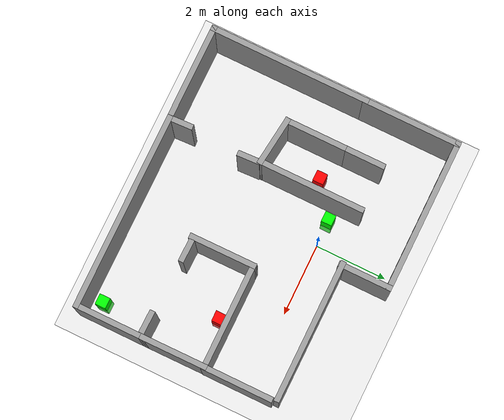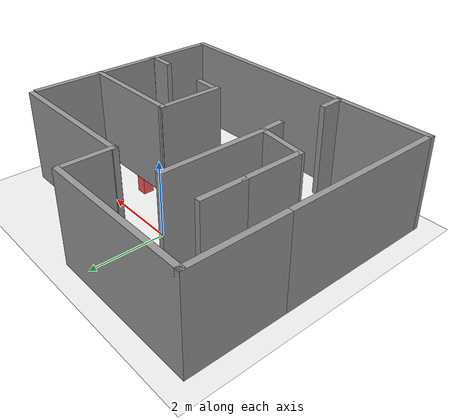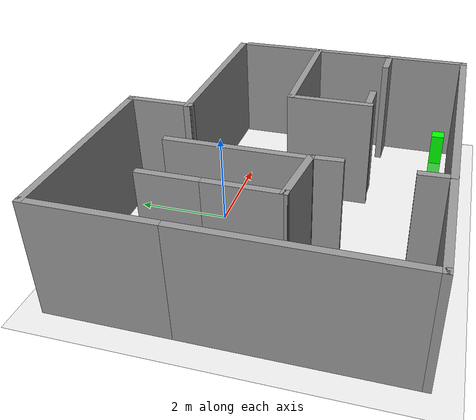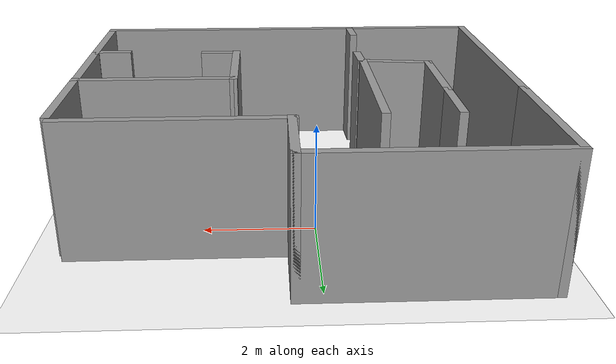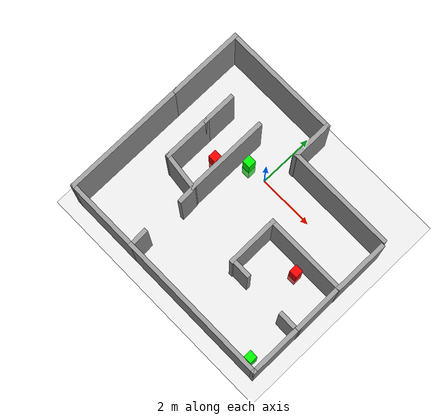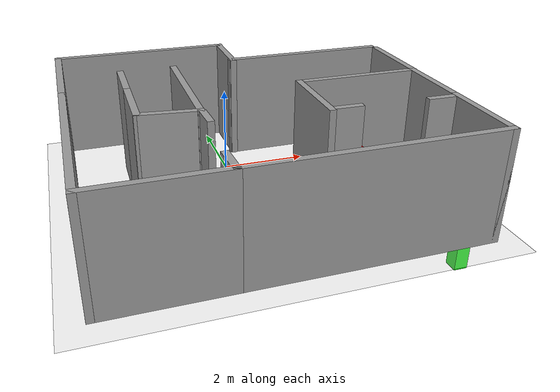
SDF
<sdf version="1.7">
 <world name="default">
  <light name="sun" type="directional">
   <pose>0 0 10 0 -0 0</pose>
   <diffuse>0.8 0.8 0.8 1</diffuse>
   <specular>0.2 0.2 0.2 1</specular>
   <attenuation>
    <range>1000</range>
    <constant>0.9</constant>
    <linear>0.01</linear>
    <quadratic>0.001</quadratic>
   </attenuation>
   <direction>-0.5 0.1 -0.9</direction>
   <spot><inner_angle>0</inner_angle><outer_angle>0</outer_angle><falloff>0</falloff></spot>
  </light>
  <model name="ground_plane">
   <static>1</static>
   <link name="link">
    <collision name="collision">
     <geometry><plane><normal>0 0 1</normal><size>100 100</size></plane></geometry>
     <surface>
      <contact><collide_bitmask>65535</collide_bitmask></contact>
      <friction><ode><mu>100</mu><mu2>50</mu2></ode></friction>
     </surface>
    </collision>
    <visual name="visual">
     <cast_shadows>0</cast_shadows>
     <geometry><plane><normal>0 0 1</normal><size>100 100</size></plane></geometry>
     <material>
      <script><uri>file://media/materials/scripts/gazebo.material</uri><name>Gazebo/Grey</name></script>
     </material>
    </visual>
   </link>
  </model>
  <gravity>0 0 -9.8</gravity>
  <magnetic_field>6e-06 2.3e-05 -4.2e-05</magnetic_field>
  <atmosphere type="adiabatic"/>
  <physics type="ode">
   <max_step_size>0.001</max_step_size>
   <real_time_factor>1</real_time_factor>
   <real_time_update_rate>1000</real_time_update_rate>
  </physics>
  <scene><ambient>0.4 0.4 0.4 1</ambient><background>0.7 0.7 0.7 1</background><shadows>1</shadows></scene>
  <spherical_coordinates>
   <surface_model>EARTH_WGS84</surface_model>
   <latitude_deg>0</latitude_deg>
   <longitude_deg>0</longitude_deg>
   <elevation>0</elevation>
   <heading_deg>0</heading_deg>
  </spherical_coordinates>
  <model name="simple_building1">
   <link name="Wall_1">
    <pose>3.96978 -0.74 0 0 -0 1.57658</pose>
    <visual name="Wall_1_Visual">
     <pose>0 0 1.25 0 -0 0</pose>
     <geometry><box><size>1.88003 0.15 2.5</size></box></geometry>
     <material>
      <script><uri>file://media/materials/scripts/gazebo.material</uri><name>Gazebo/Grey</name></script>
      <ambient>1 1 1 1</ambient>
      <shader type="pixel"/>
     </material>
     <meta><layer>0</layer></meta>
    </visual>
    <collision name="Wall_1_Collision">
     <pose>0 0 1.25 0 -0 0</pose>
     <geometry><box><size>1.88003 0.15 2.5</size></box></geometry>
     <surface>
      <friction>
       <ode><mu>1</mu><mu2>1</mu2><fdir1>0 0 0</fdir1><slip1>0</slip1><slip2>0</slip2></ode>
       <torsional>
        <coefficient>1</coefficient>
        <patch_radius>0</patch_radius>
        <surface_radius>0</surface_radius>
        <use_patch_radius>1</use_patch_radius>
        <ode><slip>0</slip></ode>
       </torsional>
      </friction>
      <bounce><restitution_coefficient>0</restitution_coefficient><threshold>1e+06</threshold></bounce>
      <contact>
       <collide_without_contact>0</collide_without_contact>
       <collide_without_contact_bitmask>1</collide_without_contact_bitmask>
       <collide_bitmask>1</collide_bitmask>
       <ode>
        <soft_cfm>0</soft_cfm>
        <soft_erp>0.2</soft_erp>
        <kp>1e+13</kp>
        <kd>1</kd>
        <max_vel>0.01</max_vel>
        <min_depth>0</min_depth>
       </ode>
       <bullet>
        <split_impulse>1</split_impulse>
        <split_impulse_penetration_threshold>-0.01</split_impulse_penetration_threshold>
        <soft_cfm>0</soft_cfm>
        <soft_erp>0.2</soft_erp>
        <kp>1e+13</kp>
        <kd>1</kd>
       </bullet>
      </contact>
     </surface>
    </collision>
   </link>
   <link name="Wall_10">
    <pose>1.29978 -3.475 0 0 -0 0</pose>
    <visual name="Wall_10_Visual">
     <pose>0 0 1.25 0 -0 0</pose>
     <geometry><box><size>5.5 0.15 2.5</size></box></geometry>
     <material>
      <script><uri>file://media/materials/scripts/gazebo.material</uri><name>Gazebo/Grey</name></script>
      <ambient>1 1 1 1</ambient>
      <shader type="pixel"/>
     </material>
     <meta><layer>0</layer></meta>
    </visual>
    <collision name="Wall_10_Collision">
     <pose>0 0 1.25 0 -0 0</pose>
     <geometry><box><size>5.5 0.15 2.5</size></box></geometry>
     <surface>
      <friction>
       <ode><mu>1</mu><mu2>1</mu2><fdir1>0 0 0</fdir1><slip1>0</slip1><slip2>0</slip2></ode>
       <torsional>
        <coefficient>1</coefficient>
        <patch_radius>0</patch_radius>
        <surface_radius>0</surface_radius>
        <use_patch_radius>1</use_patch_radius>
        <ode><slip>0</slip></ode>
       </torsional>
      </friction>
      <bounce><restitution_coefficient>0</restitution_coefficient><threshold>1e+06</threshold></bounce>
      <contact>
       <collide_without_contact>0</collide_without_contact>
       <collide_without_contact_bitmask>1</collide_without_contact_bitmask>
       <collide_bitmask>1</collide_bitmask>
       <ode>
        <soft_cfm>0</soft_cfm>
        <soft_erp>0.2</soft_erp>
        <kp>1e+13</kp>
        <kd>1</kd>
        <max_vel>0.01</max_vel>
        <min_depth>0</min_depth>
       </ode>
       <bullet>
        <split_impulse>1</split_impulse>
        <split_impulse_penetration_threshold>-0.01</split_impulse_penetration_threshold>
        <soft_cfm>0</soft_cfm>
        <soft_erp>0.2</soft_erp>
        <kp>1e+13</kp>
        <kd>1</kd>
       </bullet>
      </contact>
     </surface>
    </collision>
   </link>
   <link name="Wall_11">
    <pose>3.97478 -2.54 0 0 -0 1.5708</pose>
    <visual name="Wall_11_Visual">
     <pose>0 0 1.25 0 -0 0</pose>
     <geometry><box><size>2.02 0.15 2.5</size></box></geometry>
     <material>
      <script><uri>file://media/materials/scripts/gazebo.material</uri><name>Gazebo/Grey</name></script>
      <ambient>1 1 1 1</ambient>
      <shader type="pixel"/>
     </material>
     <meta><layer>0</layer></meta>
    </visual>
    <collision name="Wall_11_Collision">
     <pose>0 0 1.25 0 -0 0</pose>
     <geometry><box><size>2.02 0.15 2.5</size></box></geometry>
     <surface>
      <friction>
       <ode><mu>1</mu><mu2>1</mu2><fdir1>0 0 0</fdir1><slip1>0</slip1><slip2>0</slip2></ode>
       <torsional>
        <coefficient>1</coefficient>
        <patch_radius>0</patch_radius>
        <surface_radius>0</surface_radius>
        <use_patch_radius>1</use_patch_radius>
        <ode><slip>0</slip></ode>
       </torsional>
      </friction>
      <bounce><restitution_coefficient>0</restitution_coefficient><threshold>1e+06</threshold></bounce>
      <contact>
       <collide_without_contact>0</collide_without_contact>
       <collide_without_contact_bitmask>1</collide_without_contact_bitmask>
       <collide_bitmask>1</collide_bitmask>
       <ode>
        <soft_cfm>0</soft_cfm>
        <soft_erp>0.2</soft_erp>
        <kp>1e+13</kp>
        <kd>1</kd>
        <max_vel>0.01</max_vel>
        <min_depth>0</min_depth>
       </ode>
       <bullet>
        <split_impulse>1</split_impulse>
        <split_impulse_penetration_threshold>-0.01</split_impulse_penetration_threshold>
        <soft_cfm>0</soft_cfm>
        <soft_erp>0.2</soft_erp>
        <kp>1e+13</kp>
        <kd>1</kd>
       </bullet>
      </contact>
     </surface>
    </collision>
   </link>
   <link name="Wall_13">
    <pose>-2.67522 -3.475 0 0 -0 3.14159</pose>
    <visual name="Wall_13_Visual">
     <pose>0 0 1.25 0 -0 0</pose>
     <geometry><box><size>2.75 0.15 2.5</size></box></geometry>
     <material>
      <script><uri>file://media/materials/scripts/gazebo.material</uri><name>Gazebo/Grey</name></script>
      <ambient>1 1 1 1</ambient>
      <shader type="pixel"/>
     </material>
     <meta><layer>0</layer></meta>
    </visual>
    <collision name="Wall_13_Collision">
     <pose>0 0 1.25 0 -0 0</pose>
     <geometry><box><size>2.75 0.15 2.5</size></box></geometry>
     <surface>
      <friction>
       <ode><mu>1</mu><mu2>1</mu2><fdir1>0 0 0</fdir1><slip1>0</slip1><slip2>0</slip2></ode>
       <torsional>
        <coefficient>1</coefficient>
        <patch_radius>0</patch_radius>
        <surface_radius>0</surface_radius>
        <use_patch_radius>1</use_patch_radius>
        <ode><slip>0</slip></ode>
       </torsional>
      </friction>
      <bounce><restitution_coefficient>0</restitution_coefficient><threshold>1e+06</threshold></bounce>
      <contact>
       <collide_without_contact>0</collide_without_contact>
       <collide_without_contact_bitmask>1</collide_without_contact_bitmask>
       <collide_bitmask>1</collide_bitmask>
       <ode>
        <soft_cfm>0</soft_cfm>
        <soft_erp>0.2</soft_erp>
        <kp>1e+13</kp>
        <kd>1</kd>
        <max_vel>0.01</max_vel>
        <min_depth>0</min_depth>
       </ode>
       <bullet>
        <split_impulse>1</split_impulse>
        <split_impulse_penetration_threshold>-0.01</split_impulse_penetration_threshold>
        <soft_cfm>0</soft_cfm>
        <soft_erp>0.2</soft_erp>
        <kp>1e+13</kp>
        <kd>1</kd>
       </bullet>
      </contact>
     </surface>
    </collision>
   </link>
   <link name="Wall_13_clone">
    <pose>-1.39581 -3.13867 -0 0 -0 -1.52483</pose>
    <inertial>
     <inertia><ixx>0</ixx><ixy>0</ixy><ixz>0</ixz><iyy>0</iyy><iyz>0</iyz><izz>0</izz></inertia>
     <mass>0</mass>
    </inertial>
    <visual name="Wall_13_Visual">
     <pose>0 0 1.25 0 -0 0</pose>
     <geometry><box><size>0.637449 0.15 2.5</size></box></geometry>
     <material>
      <script><uri>file://media/materials/scripts/gazebo.material</uri><name>Gazebo/Grey</name></script>
      <ambient>1 1 1 1</ambient>
      <shader type="pixel"/>
     </material>
     <meta><layer>0</layer></meta>
    </visual>
    <collision name="Wall_13_Collision">
     <pose>0 0 1.25 0 -0 0</pose>
     <geometry><box><size>0.637449 0.15 2.5</size></box></geometry>
     <surface>
      <friction>
       <ode><mu>1</mu><mu2>1</mu2><fdir1>0 0 0</fdir1><slip1>0</slip1><slip2>0</slip2></ode>
       <torsional>
        <coefficient>1</coefficient>
        <patch_radius>0</patch_radius>
        <surface_radius>0</surface_radius>
        <use_patch_radius>1</use_patch_radius>
        <ode><slip>0</slip></ode>
       </torsional>
      </friction>
      <bounce><restitution_coefficient>0</restitution_coefficient><threshold>1e+06</threshold></bounce>
      <contact>
       <collide_without_contact>0</collide_without_contact>
       <collide_without_contact_bitmask>1</collide_without_contact_bitmask>
       <collide_bitmask>1</collide_bitmask>
       <ode>
        <soft_cfm>0</soft_cfm>
        <soft_erp>0.2</soft_erp>
        <kp>1e+13</kp>
        <kd>1</kd>
        <max_vel>0.01</max_vel>
        <min_depth>0</min_depth>
       </ode>
       <bullet>
        <split_impulse>1</split_impulse>
        <split_impulse_penetration_threshold>-0.01</split_impulse_penetration_threshold>
        <soft_cfm>0</soft_cfm>
        <soft_erp>0.2</soft_erp>
        <kp>1e+13</kp>
        <kd>1</kd>
       </bullet>
      </contact>
     </surface>
    </collision>
   </link>
   <link name="Wall_13_clone_clone">
    <pose>-1.33585 -1.18783 0 0 0 -1.52483</pose>
    <inertial>
     <inertia><ixx>0</ixx><ixy>0</ixy><ixz>0</ixz><iyy>0</iyy><iyz>0</iyz><izz>0</izz></inertia>
     <mass>0</mass>
    </inertial>
    <visual name="Wall_13_Visual">
     <pose>0 0 1.25 0 -0 0</pose>
     <geometry><box><size>0.637449 0.15 2.5</size></box></geometry>
     <material>
      <script><uri>file://media/materials/scripts/gazebo.material</uri><name>Gazebo/Grey</name></script>
      <ambient>1 1 1 1</ambient>
      <shader type="pixel"/>
     </material>
     <meta><layer>0</layer></meta>
    </visual>
    <collision name="Wall_13_Collision">
     <pose>0 0 1.25 0 -0 0</pose>
     <geometry><box><size>0.637449 0.15 2.5</size></box></geometry>
     <surface>
      <friction>
       <ode><mu>1</mu><mu2>1</mu2><fdir1>0 0 0</fdir1><slip1>0</slip1><slip2>0</slip2></ode>
       <torsional>
        <coefficient>1</coefficient>
        <patch_radius>0</patch_radius>
        <surface_radius>0</surface_radius>
        <use_patch_radius>1</use_patch_radius>
        <ode><slip>0</slip></ode>
       </torsional>
      </friction>
      <bounce><restitution_coefficient>0</restitution_coefficient><threshold>1e+06</threshold></bounce>
      <contact>
       <collide_without_contact>0</collide_without_contact>
       <collide_without_contact_bitmask>1</collide_without_contact_bitmask>
       <collide_bitmask>1</collide_bitmask>
       <ode>
        <soft_cfm>0</soft_cfm>
        <soft_erp>0.2</soft_erp>
        <kp>1e+13</kp>
        <kd>1</kd>
        <max_vel>0.01</max_vel>
        <min_depth>0</min_depth>
       </ode>
       <bullet>
        <split_impulse>1</split_impulse>
        <split_impulse_penetration_threshold>-0.01</split_impulse_penetration_threshold>
        <soft_cfm>0</soft_cfm>
        <soft_erp>0.2</soft_erp>
        <kp>1e+13</kp>
        <kd>1</kd>
       </bullet>
      </contact>
     </surface>
    </collision>
   </link>
   <link name="Wall_13_clone_clone_0">
    <pose>3.57794 -1.67487 0 0 0 -0.021038</pose>
    <inertial>
     <inertia><ixx>0</ixx><ixy>0</ixy><ixz>0</ixz><iyy>0</iyy><iyz>0</iyz><izz>0</izz></inertia>
     <mass>0</mass>
    </inertial>
    <visual name="Wall_13_Visual">
     <pose>0 0 1.25 0 -0 0</pose>
     <geometry><box><size>0.637449 0.15 2.5</size></box></geometry>
     <material>
      <script><uri>file://media/materials/scripts/gazebo.material</uri><name>Gazebo/Grey</name></script>
      <ambient>1 1 1 1</ambient>
      <shader type="pixel"/>
     </material>
     <meta><layer>0</layer></meta>
    </visual>
    <collision name="Wall_13_Collision">
     <pose>0 0 1.25 0 -0 0</pose>
     <geometry><box><size>0.637449 0.15 2.5</size></box></geometry>
     <surface>
      <friction>
       <ode><mu>1</mu><mu2>1</mu2><fdir1>0 0 0</fdir1><slip1>0</slip1><slip2>0</slip2></ode>
       <torsional>
        <coefficient>1</coefficient>
        <patch_radius>0</patch_radius>
        <surface_radius>0</surface_radius>
        <use_patch_radius>1</use_patch_radius>
        <ode><slip>0</slip></ode>
       </torsional>
      </friction>
      <bounce><restitution_coefficient>0</restitution_coefficient><threshold>1e+06</threshold></bounce>
      <contact>
       <collide_without_contact>0</collide_without_contact>
       <collide_without_contact_bitmask>1</collide_without_contact_bitmask>
       <collide_bitmask>1</collide_bitmask>
       <ode>
        <soft_cfm>0</soft_cfm>
        <soft_erp>0.2</soft_erp>
        <kp>1e+13</kp>
        <kd>1</kd>
        <max_vel>0.01</max_vel>
        <min_depth>0</min_depth>
       </ode>
       <bullet>
        <split_impulse>1</split_impulse>
        <split_impulse_penetration_threshold>-0.01</split_impulse_penetration_threshold>
        <soft_cfm>0</soft_cfm>
        <soft_erp>0.2</soft_erp>
        <kp>1e+13</kp>
        <kd>1</kd>
       </bullet>
      </contact>
     </surface>
    </collision>
   </link>
   <link name="Wall_13_clone_clone_0_clone">
    <pose>1.51299 -1.57485 0 0 0 -0.021038</pose>
    <inertial>
     <inertia><ixx>0</ixx><ixy>0</ixy><ixz>0</ixz><iyy>0</iyy><iyz>0</iyz><izz>0</izz></inertia>
     <mass>0</mass>
    </inertial>
    <visual name="Wall_13_Visual">
     <pose>0 0 1.25 0 -0 0</pose>
     <geometry><box><size>0.637449 0.15 2.5</size></box></geometry>
     <material>
      <script><uri>file://media/materials/scripts/gazebo.material</uri><name>Gazebo/Grey</name></script>
      <ambient>1 1 1 1</ambient>
      <shader type="pixel"/>
     </material>
     <meta><layer>0</layer></meta>
    </visual>
    <collision name="Wall_13_Collision">
     <pose>0 0 1.25 0 -0 0</pose>
     <geometry><box><size>0.637449 0.15 2.5</size></box></geometry>
     <surface>
      <friction>
       <ode><mu>1</mu><mu2>1</mu2><fdir1>0 0 0</fdir1><slip1>0</slip1><slip2>0</slip2></ode>
       <torsional>
        <coefficient>1</coefficient>
        <patch_radius>0</patch_radius>
        <surface_radius>0</surface_radius>
        <use_patch_radius>1</use_patch_radius>
        <ode><slip>0</slip></ode>
       </torsional>
      </friction>
      <bounce><restitution_coefficient>0</restitution_coefficient><threshold>1e+06</threshold></bounce>
      <contact>
       <collide_without_contact>0</collide_without_contact>
       <collide_without_contact_bitmask>1</collide_without_contact_bitmask>
       <collide_bitmask>1</collide_bitmask>
       <ode>
        <soft_cfm>0</soft_cfm>
        <soft_erp>0.2</soft_erp>
        <kp>1e+13</kp>
        <kd>1</kd>
        <max_vel>0.01</max_vel>
        <min_depth>0</min_depth>
       </ode>
       <bullet>
        <split_impulse>1</split_impulse>
        <split_impulse_penetration_threshold>-0.01</split_impulse_penetration_threshold>
        <soft_cfm>0</soft_cfm>
        <soft_erp>0.2</soft_erp>
        <kp>1e+13</kp>
        <kd>1</kd>
       </bullet>
      </contact>
     </surface>
    </collision>
   </link>
   <link name="Wall_14">
    <pose>-3.97522 -1.3 0 0 -0 1.5708</pose>
    <visual name="Wall_14_Visual">
     <pose>0 0 1.25 0 -0 0</pose>
     <geometry><box><size>4.5 0.15 2.5</size></box></geometry>
     <material>
      <script><uri>file://media/materials/scripts/gazebo.material</uri><name>Gazebo/Grey</name></script>
      <ambient>1 1 1 1</ambient>
      <shader type="pixel"/>
     </material>
     <meta><layer>0</layer></meta>
    </visual>
    <collision name="Wall_14_Collision">
     <pose>0 0 1.25 0 -0 0</pose>
     <geometry><box><size>4.5 0.15 2.5</size></box></geometry>
     <surface>
      <friction>
       <ode><mu>1</mu><mu2>1</mu2><fdir1>0 0 0</fdir1><slip1>0</slip1><slip2>0</slip2></ode>
       <torsional>
        <coefficient>1</coefficient>
        <patch_radius>0</patch_radius>
        <surface_radius>0</surface_radius>
        <use_patch_radius>1</use_patch_radius>
        <ode><slip>0</slip></ode>
       </torsional>
      </friction>
      <bounce><restitution_coefficient>0</restitution_coefficient><threshold>1e+06</threshold></bounce>
      <contact>
       <collide_without_contact>0</collide_without_contact>
       <collide_without_contact_bitmask>1</collide_without_contact_bitmask>
       <collide_bitmask>1</collide_bitmask>
       <ode>
        <soft_cfm>0</soft_cfm>
        <soft_erp>0.2</soft_erp>
        <kp>1e+13</kp>
        <kd>1</kd>
        <max_vel>0.01</max_vel>
        <min_depth>0</min_depth>
       </ode>
       <bullet>
        <split_impulse>1</split_impulse>
        <split_impulse_penetration_threshold>-0.01</split_impulse_penetration_threshold>
        <soft_cfm>0</soft_cfm>
        <soft_erp>0.2</soft_erp>
        <kp>1e+13</kp>
        <kd>1</kd>
       </bullet>
      </contact>
     </surface>
    </collision>
   </link>
   <link name="Wall_16">
    <pose>-2.62522 0.075 0 0 0 -1.5708</pose>
    <visual name="Wall_16_Visual">
     <pose>0 0 1.25 0 -0 0</pose>
     <geometry><box><size>1.75 0.15 2.5</size></box></geometry>
     <material>
      <script><uri>file://media/materials/scripts/gazebo.material</uri><name>Gazebo/Grey</name></script>
      <ambient>1 1 1 1</ambient>
      <shader type="pixel"/>
     </material>
     <meta><layer>0</layer></meta>
    </visual>
    <collision name="Wall_16_Collision">
     <pose>0 0 1.25 0 -0 0</pose>
     <geometry><box><size>1.75 0.15 2.5</size></box></geometry>
     <surface>
      <friction>
       <ode><mu>1</mu><mu2>1</mu2><fdir1>0 0 0</fdir1><slip1>0</slip1><slip2>0</slip2></ode>
       <torsional>
        <coefficient>1</coefficient>
        <patch_radius>0</patch_radius>
        <surface_radius>0</surface_radius>
        <use_patch_radius>1</use_patch_radius>
        <ode><slip>0</slip></ode>
       </torsional>
      </friction>
      <bounce><restitution_coefficient>0</restitution_coefficient><threshold>1e+06</threshold></bounce>
      <contact>
       <collide_without_contact>0</collide_without_contact>
       <collide_without_contact_bitmask>1</collide_without_contact_bitmask>
       <collide_bitmask>1</collide_bitmask>
       <ode>
        <soft_cfm>0</soft_cfm>
        <soft_erp>0.2</soft_erp>
        <kp>1e+13</kp>
        <kd>1</kd>
        <max_vel>0.01</max_vel>
        <min_depth>0</min_depth>
       </ode>
       <bullet>
        <split_impulse>1</split_impulse>
        <split_impulse_penetration_threshold>-0.01</split_impulse_penetration_threshold>
        <soft_cfm>0</soft_cfm>
        <soft_erp>0.2</soft_erp>
        <kp>1e+13</kp>
        <kd>1</kd>
       </bullet>
      </contact>
     </surface>
    </collision>
   </link>
   <link name="Wall_17">
    <pose>-2.00022 -0.8 0 0 0 -0.119429</pose>
    <visual name="Wall_17_Visual">
     <pose>0 0 1.25 0 -0 0</pose>
     <geometry><box><size>1.40897 0.15 2.5</size></box></geometry>
     <material>
      <script><uri>file://media/materials/scripts/gazebo.material</uri><name>Gazebo/Grey</name></script>
      <ambient>1 1 1 1</ambient>
      <shader type="pixel"/>
     </material>
     <meta><layer>0</layer></meta>
    </visual>
    <collision name="Wall_17_Collision">
     <pose>0 0 1.25 0 -0 0</pose>
     <geometry><box><size>1.40897 0.15 2.5</size></box></geometry>
     <surface>
      <friction>
       <ode><mu>1</mu><mu2>1</mu2><fdir1>0 0 0</fdir1><slip1>0</slip1><slip2>0</slip2></ode>
       <torsional>
        <coefficient>1</coefficient>
        <patch_radius>0</patch_radius>
        <surface_radius>0</surface_radius>
        <use_patch_radius>1</use_patch_radius>
        <ode><slip>0</slip></ode>
       </torsional>
      </friction>
      <bounce><restitution_coefficient>0</restitution_coefficient><threshold>1e+06</threshold></bounce>
      <contact>
       <collide_without_contact>0</collide_without_contact>
       <collide_without_contact_bitmask>1</collide_without_contact_bitmask>
       <collide_bitmask>1</collide_bitmask>
       <ode>
        <soft_cfm>0</soft_cfm>
        <soft_erp>0.2</soft_erp>
        <kp>1e+13</kp>
        <kd>1</kd>
        <max_vel>0.01</max_vel>
        <min_depth>0</min_depth>
       </ode>
       <bullet>
        <split_impulse>1</split_impulse>
        <split_impulse_penetration_threshold>-0.01</split_impulse_penetration_threshold>
        <soft_cfm>0</soft_cfm>
        <soft_erp>0.2</soft_erp>
        <kp>1e+13</kp>
        <kd>1</kd>
       </bullet>
      </contact>
     </surface>
    </collision>
   </link>
   <link name="Wall_2">
    <pose>2.54978 0.125 0 0 -0 3.14159</pose>
    <visual name="Wall_2_Visual">
     <pose>0 0 1.25 0 -0 0</pose>
     <geometry><box><size>3 0.15 2.5</size></box></geometry>
     <material>
      <script><uri>file://media/materials/scripts/gazebo.material</uri><name>Gazebo/Grey</name></script>
      <ambient>1 1 1 1</ambient>
      <shader type="pixel"/>
     </material>
     <meta><layer>0</layer></meta>
    </visual>
    <collision name="Wall_2_Collision">
     <pose>0 0 1.25 0 -0 0</pose>
     <geometry><box><size>3 0.15 2.5</size></box></geometry>
     <surface>
      <friction>
       <ode><mu>1</mu><mu2>1</mu2><fdir1>0 0 0</fdir1><slip1>0</slip1><slip2>0</slip2></ode>
       <torsional>
        <coefficient>1</coefficient>
        <patch_radius>0</patch_radius>
        <surface_radius>0</surface_radius>
        <use_patch_radius>1</use_patch_radius>
        <ode><slip>0</slip></ode>
       </torsional>
      </friction>
      <bounce><restitution_coefficient>0</restitution_coefficient><threshold>1e+06</threshold></bounce>
      <contact>
       <collide_without_contact>0</collide_without_contact>
       <collide_without_contact_bitmask>1</collide_without_contact_bitmask>
       <collide_bitmask>1</collide_bitmask>
       <ode>
        <soft_cfm>0</soft_cfm>
        <soft_erp>0.2</soft_erp>
        <kp>1e+13</kp>
        <kd>1</kd>
        <max_vel>0.01</max_vel>
        <min_depth>0</min_depth>
       </ode>
       <bullet>
        <split_impulse>1</split_impulse>
        <split_impulse_penetration_threshold>-0.01</split_impulse_penetration_threshold>
        <soft_cfm>0</soft_cfm>
        <soft_erp>0.2</soft_erp>
        <kp>1e+13</kp>
        <kd>1</kd>
       </bullet>
      </contact>
     </surface>
    </collision>
   </link>
   <link name="Wall_20">
    <pose>-3.97522 2.175 0 0 -0 1.5708</pose>
    <visual name="Wall_20_Visual">
     <pose>0 0 1.25 0 -0 0</pose>
     <geometry><box><size>2.75 0.15 2.5</size></box></geometry>
     <material>
      <script><uri>file://media/materials/scripts/gazebo.material</uri><name>Gazebo/Grey</name></script>
      <ambient>1 1 1 1</ambient>
      <shader type="pixel"/>
     </material>
     <meta><layer>0</layer></meta>
    </visual>
    <collision name="Wall_20_Collision">
     <pose>0 0 1.25 0 -0 0</pose>
     <geometry><box><size>2.75 0.15 2.5</size></box></geometry>
     <surface>
      <friction>
       <ode><mu>1</mu><mu2>1</mu2><fdir1>0 0 0</fdir1><slip1>0</slip1><slip2>0</slip2></ode>
       <torsional>
        <coefficient>1</coefficient>
        <patch_radius>0</patch_radius>
        <surface_radius>0</surface_radius>
        <use_patch_radius>1</use_patch_radius>
        <ode><slip>0</slip></ode>
       </torsional>
      </friction>
      <bounce><restitution_coefficient>0</restitution_coefficient><threshold>1e+06</threshold></bounce>
      <contact>
       <collide_without_contact>0</collide_without_contact>
       <collide_without_contact_bitmask>1</collide_without_contact_bitmask>
       <collide_bitmask>1</collide_bitmask>
       <ode>
        <soft_cfm>0</soft_cfm>
        <soft_erp>0.2</soft_erp>
        <kp>1e+13</kp>
        <kd>1</kd>
        <max_vel>0.01</max_vel>
        <min_depth>0</min_depth>
       </ode>
       <bullet>
        <split_impulse>1</split_impulse>
        <split_impulse_penetration_threshold>-0.01</split_impulse_penetration_threshold>
        <soft_cfm>0</soft_cfm>
        <soft_erp>0.2</soft_erp>
        <kp>1e+13</kp>
        <kd>1</kd>
       </bullet>
      </contact>
     </surface>
    </collision>
   </link>
   <link name="Wall_21">
    <pose>-1.92522 3.475 0 0 -0 0</pose>
    <visual name="Wall_21_Visual">
     <pose>0 0 1.25 0 -0 0</pose>
     <geometry><box><size>4.25 0.15 2.5</size></box></geometry>
     <material>
      <script><uri>file://media/materials/scripts/gazebo.material</uri><name>Gazebo/Grey</name></script>
      <ambient>1 1 1 1</ambient>
      <shader type="pixel"/>
     </material>
     <meta><layer>0</layer></meta>
    </visual>
    <collision name="Wall_21_Collision">
     <pose>0 0 1.25 0 -0 0</pose>
     <geometry><box><size>4.25 0.15 2.5</size></box></geometry>
     <surface>
      <friction>
       <ode><mu>1</mu><mu2>1</mu2><fdir1>0 0 0</fdir1><slip1>0</slip1><slip2>0</slip2></ode>
       <torsional>
        <coefficient>1</coefficient>
        <patch_radius>0</patch_radius>
        <surface_radius>0</surface_radius>
        <use_patch_radius>1</use_patch_radius>
        <ode><slip>0</slip></ode>
       </torsional>
      </friction>
      <bounce><restitution_coefficient>0</restitution_coefficient><threshold>1e+06</threshold></bounce>
      <contact>
       <collide_without_contact>0</collide_without_contact>
       <collide_without_contact_bitmask>1</collide_without_contact_bitmask>
       <collide_bitmask>1</collide_bitmask>
       <ode>
        <soft_cfm>0</soft_cfm>
        <soft_erp>0.2</soft_erp>
        <kp>1e+13</kp>
        <kd>1</kd>
        <max_vel>0.01</max_vel>
        <min_depth>0</min_depth>
       </ode>
       <bullet>
        <split_impulse>1</split_impulse>
        <split_impulse_penetration_threshold>-0.01</split_impulse_penetration_threshold>
        <soft_cfm>0</soft_cfm>
        <soft_erp>0.2</soft_erp>
        <kp>1e+13</kp>
        <kd>1</kd>
       </bullet>
      </contact>
     </surface>
    </collision>
   </link>
   <link name="Wall_22">
    <pose>0.124784 2.8 0 0 0 -1.5708</pose>
    <visual name="Wall_22_Visual">
     <pose>0 0 1.25 0 -0 0</pose>
     <geometry><box><size>1.5 0.15 2.5</size></box></geometry>
     <material>
      <script><uri>file://media/materials/scripts/gazebo.material</uri><name>Gazebo/Grey</name></script>
      <ambient>1 1 1 1</ambient>
      <shader type="pixel"/>
     </material>
     <meta><layer>0</layer></meta>
    </visual>
    <collision name="Wall_22_Collision">
     <pose>0 0 1.25 0 -0 0</pose>
     <geometry><box><size>1.5 0.15 2.5</size></box></geometry>
     <surface>
      <friction>
       <ode><mu>1</mu><mu2>1</mu2><fdir1>0 0 0</fdir1><slip1>0</slip1><slip2>0</slip2></ode>
       <torsional>
        <coefficient>1</coefficient>
        <patch_radius>0</patch_radius>
        <surface_radius>0</surface_radius>
        <use_patch_radius>1</use_patch_radius>
        <ode><slip>0</slip></ode>
       </torsional>
      </friction>
      <bounce><restitution_coefficient>0</restitution_coefficient><threshold>1e+06</threshold></bounce>
      <contact>
       <collide_without_contact>0</collide_without_contact>
       <collide_without_contact_bitmask>1</collide_without_contact_bitmask>
       <collide_bitmask>1</collide_bitmask>
       <ode>
        <soft_cfm>0</soft_cfm>
        <soft_erp>0.2</soft_erp>
        <kp>1e+13</kp>
        <kd>1</kd>
        <max_vel>0.01</max_vel>
        <min_depth>0</min_depth>
       </ode>
       <bullet>
        <split_impulse>1</split_impulse>
        <split_impulse_penetration_threshold>-0.01</split_impulse_penetration_threshold>
        <soft_cfm>0</soft_cfm>
        <soft_erp>0.2</soft_erp>
        <kp>1e+13</kp>
        <kd>1</kd>
       </bullet>
      </contact>
     </surface>
    </collision>
   </link>
   <link name="Wall_24">
    <pose>-2.62522 1.425 0 0 -0 1.5708</pose>
    <visual name="Wall_24_Visual">
     <pose>0 0 1.25 0 -0 0</pose>
     <geometry><box><size>1.25 0.15 2.5</size></box></geometry>
     <material>
      <script><uri>file://media/materials/scripts/gazebo.material</uri><name>Gazebo/Grey</name></script>
      <ambient>1 1 1 1</ambient>
      <shader type="pixel"/>
     </material>
     <meta><layer>0</layer></meta>
    </visual>
    <collision name="Wall_24_Collision">
     <pose>0 0 1.25 0 -0 0</pose>
     <geometry><box><size>1.25 0.15 2.5</size></box></geometry>
     <surface>
      <friction>
       <ode><mu>1</mu><mu2>1</mu2><fdir1>0 0 0</fdir1><slip1>0</slip1><slip2>0</slip2></ode>
       <torsional>
        <coefficient>1</coefficient>
        <patch_radius>0</patch_radius>
        <surface_radius>0</surface_radius>
        <use_patch_radius>1</use_patch_radius>
        <ode><slip>0</slip></ode>
       </torsional>
      </friction>
      <bounce><restitution_coefficient>0</restitution_coefficient><threshold>1e+06</threshold></bounce>
      <contact>
       <collide_without_contact>0</collide_without_contact>
       <collide_without_contact_bitmask>1</collide_without_contact_bitmask>
       <collide_bitmask>1</collide_bitmask>
       <ode>
        <soft_cfm>0</soft_cfm>
        <soft_erp>0.2</soft_erp>
        <kp>1e+13</kp>
        <kd>1</kd>
        <max_vel>0.01</max_vel>
        <min_depth>0</min_depth>
       </ode>
       <bullet>
        <split_impulse>1</split_impulse>
        <split_impulse_penetration_threshold>-0.01</split_impulse_penetration_threshold>
        <soft_cfm>0</soft_cfm>
        <soft_erp>0.2</soft_erp>
        <kp>1e+13</kp>
        <kd>1</kd>
       </bullet>
      </contact>
     </surface>
    </collision>
   </link>
   <link name="Wall_2_clone">
    <pose>1.99466 2.14711 0 0 -0 3.14159</pose>
    <inertial>
     <inertia><ixx>0</ixx><ixy>0</ixy><ixz>0</ixz><iyy>0</iyy><iyz>0</iyz><izz>0</izz></inertia>
     <mass>0</mass>
    </inertial>
    <visual name="Wall_2_Visual">
     <pose>0 0 1.25 0 -0 0</pose>
     <geometry><box><size>3.95324 0.15 2.5</size></box></geometry>
     <material>
      <script><uri>file://media/materials/scripts/gazebo.material</uri><name>Gazebo/Grey</name></script>
      <ambient>1 1 1 1</ambient>
      <shader type="pixel"/>
     </material>
     <meta><layer>0</layer></meta>
    </visual>
    <collision name="Wall_2_Collision">
     <pose>0 0 1.25 0 -0 0</pose>
     <geometry><box><size>3.95324 0.15 2.5</size></box></geometry>
     <surface>
      <friction>
       <ode><mu>1</mu><mu2>1</mu2><fdir1>0 0 0</fdir1><slip1>0</slip1><slip2>0</slip2></ode>
       <torsional>
        <coefficient>1</coefficient>
        <patch_radius>0</patch_radius>
        <surface_radius>0</surface_radius>
        <use_patch_radius>1</use_patch_radius>
        <ode><slip>0</slip></ode>
       </torsional>
      </friction>
      <bounce><restitution_coefficient>0</restitution_coefficient><threshold>1e+06</threshold></bounce>
      <contact>
       <collide_without_contact>0</collide_without_contact>
       <collide_without_contact_bitmask>1</collide_without_contact_bitmask>
       <collide_bitmask>1</collide_bitmask>
       <ode>
        <soft_cfm>0</soft_cfm>
        <soft_erp>0.2</soft_erp>
        <kp>1e+13</kp>
        <kd>1</kd>
        <max_vel>0.01</max_vel>
        <min_depth>0</min_depth>
       </ode>
       <bullet>
        <split_impulse>1</split_impulse>
        <split_impulse_penetration_threshold>-0.01</split_impulse_penetration_threshold>
        <soft_cfm>0</soft_cfm>
        <soft_erp>0.2</soft_erp>
        <kp>1e+13</kp>
        <kd>1</kd>
       </bullet>
      </contact>
     </surface>
    </collision>
   </link>
   <link name="Wall_3">
    <pose>1.11978 -0.74 0 0 0 -1.56502</pose>
    <visual name="Wall_3_Visual">
     <pose>0 0 1.25 0 -0 0</pose>
     <geometry><box><size>1.88003 0.15 2.5</size></box></geometry>
     <material>
      <script><uri>file://media/materials/scripts/gazebo.material</uri><name>Gazebo/Grey</name></script>
      <ambient>1 1 1 1</ambient>
      <shader type="pixel"/>
     </material>
     <meta><layer>0</layer></meta>
    </visual>
    <collision name="Wall_3_Collision">
     <pose>0 0 1.25 0 -0 0</pose>
     <geometry><box><size>1.88003 0.15 2.5</size></box></geometry>
     <surface>
      <friction>
       <ode><mu>1</mu><mu2>1</mu2><fdir1>0 0 0</fdir1><slip1>0</slip1><slip2>0</slip2></ode>
       <torsional>
        <coefficient>1</coefficient>
        <patch_radius>0</patch_radius>
        <surface_radius>0</surface_radius>
        <use_patch_radius>1</use_patch_radius>
        <ode><slip>0</slip></ode>
       </torsional>
      </friction>
      <bounce><restitution_coefficient>0</restitution_coefficient><threshold>1e+06</threshold></bounce>
      <contact>
       <collide_without_contact>0</collide_without_contact>
       <collide_without_contact_bitmask>1</collide_without_contact_bitmask>
       <collide_bitmask>1</collide_bitmask>
       <ode>
        <soft_cfm>0</soft_cfm>
        <soft_erp>0.2</soft_erp>
        <kp>1e+13</kp>
        <kd>1</kd>
        <max_vel>0.01</max_vel>
        <min_depth>0</min_depth>
       </ode>
       <bullet>
        <split_impulse>1</split_impulse>
        <split_impulse_penetration_threshold>-0.01</split_impulse_penetration_threshold>
        <soft_cfm>0</soft_cfm>
        <soft_erp>0.2</soft_erp>
        <kp>1e+13</kp>
        <kd>1</kd>
       </bullet>
      </contact>
     </surface>
    </collision>
   </link>
   <link name="Wall_5">
    <pose>3.97478 1.05 0 0 -0 1.5708</pose>
    <visual name="Wall_5_Visual">
     <pose>0 0 1.25 0 -0 0</pose>
     <geometry><box><size>2 0.15 2.5</size></box></geometry>
     <material>
      <script><uri>file://media/materials/scripts/gazebo.material</uri><name>Gazebo/Grey</name></script>
      <ambient>1 1 1 1</ambient>
      <shader type="pixel"/>
     </material>
     <meta><layer>0</layer></meta>
    </visual>
    <collision name="Wall_5_Collision">
     <pose>0 0 1.25 0 -0 0</pose>
     <geometry><box><size>2 0.15 2.5</size></box></geometry>
     <surface>
      <friction>
       <ode><mu>1</mu><mu2>1</mu2><fdir1>0 0 0</fdir1><slip1>0</slip1><slip2>0</slip2></ode>
       <torsional>
        <coefficient>1</coefficient>
        <patch_radius>0</patch_radius>
        <surface_radius>0</surface_radius>
        <use_patch_radius>1</use_patch_radius>
        <ode><slip>0</slip></ode>
       </torsional>
      </friction>
      <bounce><restitution_coefficient>0</restitution_coefficient><threshold>1e+06</threshold></bounce>
      <contact>
       <collide_without_contact>0</collide_without_contact>
       <collide_without_contact_bitmask>1</collide_without_contact_bitmask>
       <collide_bitmask>1</collide_bitmask>
       <ode>
        <soft_cfm>0</soft_cfm>
        <soft_erp>0.2</soft_erp>
        <kp>1e+13</kp>
        <kd>1</kd>
        <max_vel>0.01</max_vel>
        <min_depth>0</min_depth>
       </ode>
       <bullet>
        <split_impulse>1</split_impulse>
        <split_impulse_penetration_threshold>-0.01</split_impulse_penetration_threshold>
        <soft_cfm>0</soft_cfm>
        <soft_erp>0.2</soft_erp>
        <kp>1e+13</kp>
        <kd>1</kd>
       </bullet>
      </contact>
     </surface>
    </collision>
   </link>
   <link name="Wall_7">
    <pose>-1.37522 0.55 0 0 0 -1.5708</pose>
    <visual name="Wall_7_Visual">
     <pose>0 0 1.25 0 -0 0</pose>
     <geometry><box><size>3 0.15 2.5</size></box></geometry>
     <material>
      <script><uri>file://media/materials/scripts/gazebo.material</uri><name>Gazebo/Grey</name></script>
      <ambient>1 1 1 1</ambient>
      <shader type="pixel"/>
     </material>
     <meta><layer>0</layer></meta>
    </visual>
    <collision name="Wall_7_Collision">
     <pose>0 0 1.25 0 -0 0</pose>
     <geometry><box><size>3 0.15 2.5</size></box></geometry>
     <surface>
      <friction>
       <ode><mu>1</mu><mu2>1</mu2><fdir1>0 0 0</fdir1><slip1>0</slip1><slip2>0</slip2></ode>
       <torsional>
        <coefficient>1</coefficient>
        <patch_radius>0</patch_radius>
        <surface_radius>0</surface_radius>
        <use_patch_radius>1</use_patch_radius>
        <ode><slip>0</slip></ode>
       </torsional>
      </friction>
      <bounce><restitution_coefficient>0</restitution_coefficient><threshold>1e+06</threshold></bounce>
      <contact>
       <collide_without_contact>0</collide_without_contact>
       <collide_without_contact_bitmask>1</collide_without_contact_bitmask>
       <collide_bitmask>1</collide_bitmask>
       <ode>
        <soft_cfm>0</soft_cfm>
        <soft_erp>0.2</soft_erp>
        <kp>1e+13</kp>
        <kd>1</kd>
        <max_vel>0.01</max_vel>
        <min_depth>0</min_depth>
       </ode>
       <bullet>
        <split_impulse>1</split_impulse>
        <split_impulse_penetration_threshold>-0.01</split_impulse_penetration_threshold>
        <soft_cfm>0</soft_cfm>
        <soft_erp>0.2</soft_erp>
        <kp>1e+13</kp>
        <kd>1</kd>
       </bullet>
      </contact>
     </surface>
    </collision>
   </link>
   <static>1</static>
   <pose>0.32526 -1.2873 0 0 -0 0</pose>
  </model>
  <model name="green_square">
   <static>1</static>
   <link name="link">
    <visual name="visual">
     <geometry><box><size>0.3 0.3 1.5</size></box></geometry>
     <material>
      <ambient>0 1 0 1</ambient>
      <diffuse>0 1 0 1</diffuse>
      <specular>0 0 0 0</specular>
      <emissive>0 0 0 0</emissive>
      <shader type="pixel"/>
     </material>
    </visual>
    <collision name="green_box_collision"><geometry><box><size>0.3 0.3 1.5</size></box></geometry></collision>
   </link>
   <pose>-0.714498 -0.023102 0 0 -0 0</pose>
  </model>
  <model name="red_square">
   <static>1</static>
   <link name="link">
    <visual name="visual">
     <geometry><box><size>0.300001 0.3 1.5</size></box></geometry>
     <material>
      <ambient>1 0 0 1</ambient>
      <diffuse>1 0 0 1</diffuse>
      <specular>0 0 0 0</specular>
      <emissive>0 0 0 0</emissive>
      <shader type="pixel"/>
     </material>
    </visual>
    <collision name="green_box_collision">
     <geometry><box><size>0.300001 0.3 1.5</size></box></geometry>
    </collision>
   </link>
   <pose>-1.60406 -0.695598 0 0 -0 0</pose>
  </model>
  <model name="green_square_0">
   <static>1</static>
   <link name="link">
    <visual name="visual">
     <geometry><box><size>0.3 0.3 1.5</size></box></geometry>
     <material>
      <ambient>0 1 0 1</ambient>
      <diffuse>0 1 0 1</diffuse>
      <specular>0 0 0 0</specular>
      <emissive>0 0 0 0</emissive>
      <shader type="pixel"/>
     </material>
    </visual>
    <collision name="green_box_collision"><geometry><box><size>0.3 0.3 1.5</size></box></geometry></collision>
   </link>
   <pose>3.82269 -4.40151 0 0 -0 0</pose>
  </model>
  <model name="red_square_0">
   <static>1</static>
   <link name="link">
    <visual name="visual">
     <geometry><box><size>0.3 0.3 1.5</size></box></geometry>
     <material>
      <ambient>1 0 0 1</ambient>
      <diffuse>1 0 0 1</diffuse>
      <specular>0 0 0 0</specular>
      <emissive>0 0 0 0</emissive>
      <shader type="pixel"/>
     </material>
    </visual>
    <collision name="green_box_collision"><geometry><box><size>0.3 0.3 1.5</size></box></geometry></collision>
   </link>
   <pose>2.89576 -1.46684 0 0 -0 0</pose>
  </model>
 </world>
</sdf>
